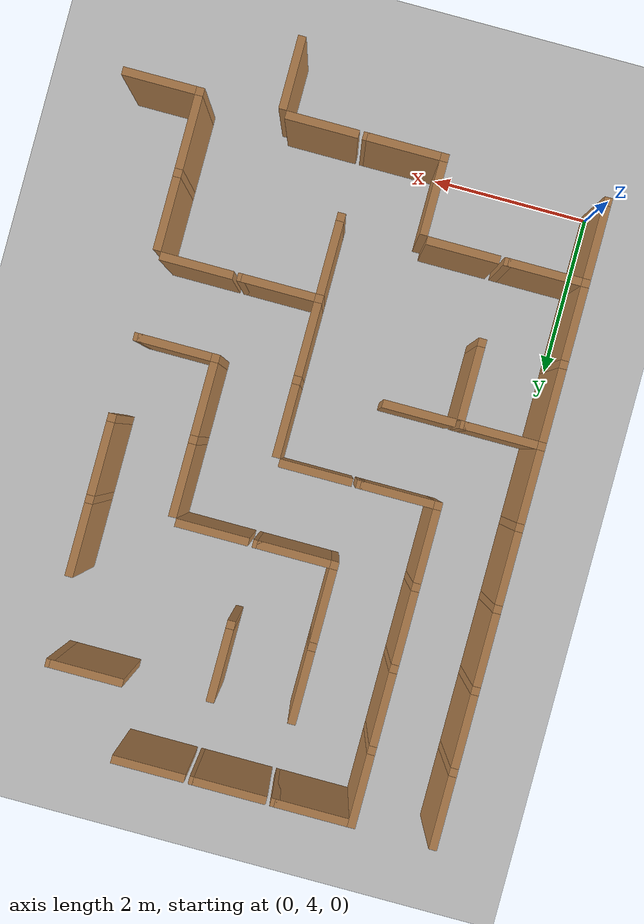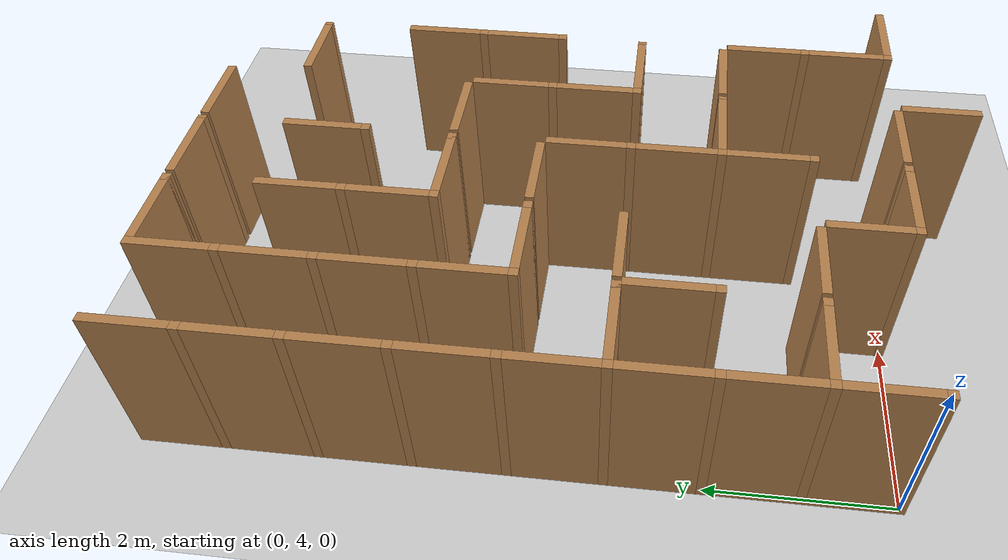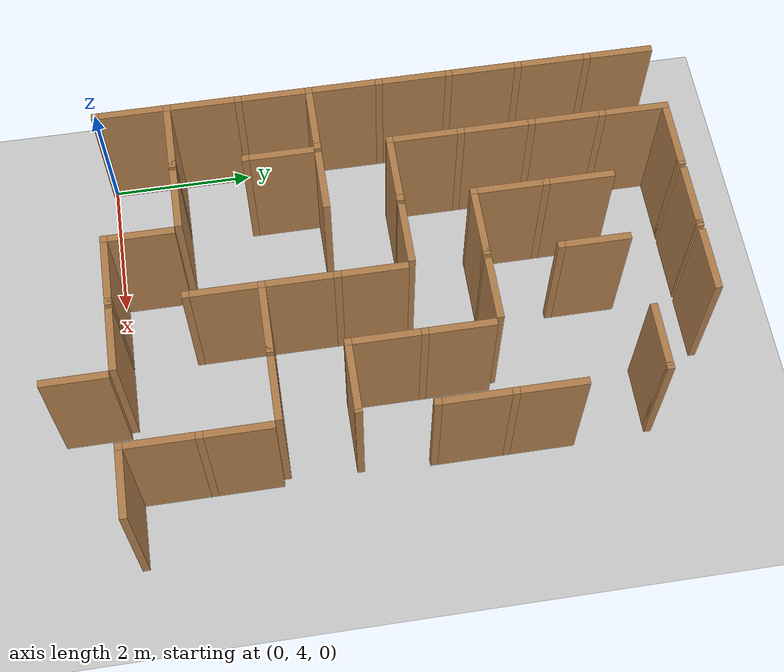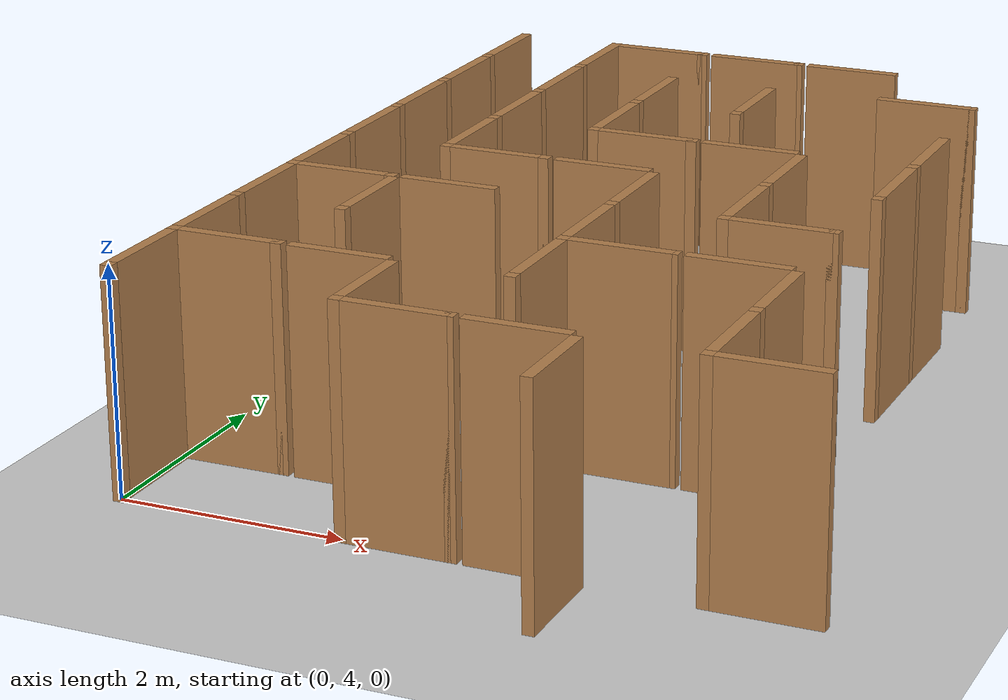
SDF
<sdf version="1.6">
 <world name="default">
  <include><uri>model://sun</uri></include>
  <model name="ground_plane">
   <static>true</static>
   <link name="link">
    <collision name="collision"><geometry><plane><size>12.0 12.0</size></plane></geometry></collision>
    <visual name="visual">
     <cast_shadows>false</cast_shadows>
     <geometry><plane><size>12.0 12.0</size></plane></geometry>
     <material>
      <script><uri>file://media/materials/scripts/gazebo.material</uri><name>Gazebo/Grey</name></script>
     </material>
    </visual>
   </link>
   <pose>6.0 6.0 0 0 0 0</pose>
  </model>
  <model name="vwall_3_4">
   <pose>4.0 3.5 1.0 0 0 0</pose>
   <link name="link">
    <collision name="collision"><geometry><box><size>0.1 0.9 2</size></box></geometry></collision>
    <visual name="visual">
     <geometry><box><size>0.1 0.9 2</size></box></geometry>
     <material>
      <script><uri>file://media/materials/scripts/gazebo.material</uri><name>Gazebo/Wood</name></script>
     </material>
    </visual>
   </link>
  </model>
  <model name="vwall_4_0">
   <pose>0.0 4.5 1.0 0 0 0</pose>
   <link name="link">
    <collision name="collision"><geometry><box><size>0.1 0.9 2</size></box></geometry></collision>
    <visual name="visual">
     <geometry><box><size>0.1 0.9 2</size></box></geometry>
     <material>
      <script><uri>file://media/materials/scripts/gazebo.material</uri><name>Gazebo/Wood</name></script>
     </material>
    </visual>
   </link>
  </model>
  <model name="joint_0.0_4.0">
   <pose>0.0 4.0 1.0 0 0 0</pose>
   <link name="link">
    <collision name="collision"><geometry><box><size>0.1 0.1 2</size></box></geometry></collision>
    <visual name="visual">
     <geometry><box><size>0.1 0.1 2</size></box></geometry>
     <material>
      <script><uri>file://media/materials/scripts/gazebo.material</uri><name>Gazebo/Wood</name></script>
     </material>
    </visual>
   </link>
  </model>
  <model name="vwall_4_2">
   <pose>2.0 4.5 1.0 0 0 0</pose>
   <link name="link">
    <collision name="collision"><geometry><box><size>0.1 0.9 2</size></box></geometry></collision>
    <visual name="visual">
     <geometry><box><size>0.1 0.9 2</size></box></geometry>
     <material>
      <script><uri>file://media/materials/scripts/gazebo.material</uri><name>Gazebo/Wood</name></script>
     </material>
    </visual>
   </link>
  </model>
  <model name="joint_2.0_4.0">
   <pose>2.0 4.0 1.0 0 0 0</pose>
   <link name="link">
    <collision name="collision"><geometry><box><size>0.1 0.1 2</size></box></geometry></collision>
    <visual name="visual">
     <geometry><box><size>0.1 0.1 2</size></box></geometry>
     <material>
      <script><uri>file://media/materials/scripts/gazebo.material</uri><name>Gazebo/Wood</name></script>
     </material>
    </visual>
   </link>
  </model>
  <model name="vwall_4_5">
   <pose>5.0 4.5 1.0 0 0 0</pose>
   <link name="link">
    <collision name="collision"><geometry><box><size>0.1 0.9 2</size></box></geometry></collision>
    <visual name="visual">
     <geometry><box><size>0.1 0.9 2</size></box></geometry>
     <material>
      <script><uri>file://media/materials/scripts/gazebo.material</uri><name>Gazebo/Wood</name></script>
     </material>
    </visual>
   </link>
  </model>
  <model name="joint_5.0_4.0">
   <pose>5.0 4.0 1.0 0 0 0</pose>
   <link name="link">
    <collision name="collision"><geometry><box><size>0.1 0.1 2</size></box></geometry></collision>
    <visual name="visual">
     <geometry><box><size>0.1 0.1 2</size></box></geometry>
     <material>
      <script><uri>file://media/materials/scripts/gazebo.material</uri><name>Gazebo/Wood</name></script>
     </material>
    </visual>
   </link>
  </model>
  <model name="vwall_5_0">
   <pose>0.0 5.5 1.0 0 0 0</pose>
   <link name="link">
    <collision name="collision"><geometry><box><size>0.1 0.9 2</size></box></geometry></collision>
    <visual name="visual">
     <geometry><box><size>0.1 0.9 2</size></box></geometry>
     <material>
      <script><uri>file://media/materials/scripts/gazebo.material</uri><name>Gazebo/Wood</name></script>
     </material>
    </visual>
   </link>
  </model>
  <model name="joint_0.0_5.0">
   <pose>0.0 5.0 1.0 0 0 0</pose>
   <link name="link">
    <collision name="collision"><geometry><box><size>0.1 0.1 2</size></box></geometry></collision>
    <visual name="visual">
     <geometry><box><size>0.1 0.1 2</size></box></geometry>
     <material>
      <script><uri>file://media/materials/scripts/gazebo.material</uri><name>Gazebo/Wood</name></script>
     </material>
    </visual>
   </link>
  </model>
  <model name="vwall_5_3">
   <pose>3.0 5.5 1.0 0 0 0</pose>
   <link name="link">
    <collision name="collision"><geometry><box><size>0.1 0.9 2</size></box></geometry></collision>
    <visual name="visual">
     <geometry><box><size>0.1 0.9 2</size></box></geometry>
     <material>
      <script><uri>file://media/materials/scripts/gazebo.material</uri><name>Gazebo/Wood</name></script>
     </material>
    </visual>
   </link>
  </model>
  <model name="joint_3.0_5.0">
   <pose>3.0 5.0 1.0 0 0 0</pose>
   <link name="link">
    <collision name="collision"><geometry><box><size>0.1 0.1 2</size></box></geometry></collision>
    <visual name="visual">
     <geometry><box><size>0.1 0.1 2</size></box></geometry>
     <material>
      <script><uri>file://media/materials/scripts/gazebo.material</uri><name>Gazebo/Wood</name></script>
     </material>
    </visual>
   </link>
  </model>
  <model name="vwall_5_5">
   <pose>5.0 5.5 1.0 0 0 0</pose>
   <link name="link">
    <collision name="collision"><geometry><box><size>0.1 0.9 2</size></box></geometry></collision>
    <visual name="visual">
     <geometry><box><size>0.1 0.9 2</size></box></geometry>
     <material>
      <script><uri>file://media/materials/scripts/gazebo.material</uri><name>Gazebo/Wood</name></script>
     </material>
    </visual>
   </link>
  </model>
  <model name="joint_5.0_5.0">
   <pose>5.0 5.0 1.0 0 0 0</pose>
   <link name="link">
    <collision name="collision"><geometry><box><size>0.1 0.1 2</size></box></geometry></collision>
    <visual name="visual">
     <geometry><box><size>0.1 0.1 2</size></box></geometry>
     <material>
      <script><uri>file://media/materials/scripts/gazebo.material</uri><name>Gazebo/Wood</name></script>
     </material>
    </visual>
   </link>
  </model>
  <model name="vwall_6_0">
   <pose>0.0 6.5 1.0 0 0 0</pose>
   <link name="link">
    <collision name="collision"><geometry><box><size>0.1 0.9 2</size></box></geometry></collision>
    <visual name="visual">
     <geometry><box><size>0.1 0.9 2</size></box></geometry>
     <material>
      <script><uri>file://media/materials/scripts/gazebo.material</uri><name>Gazebo/Wood</name></script>
     </material>
    </visual>
   </link>
  </model>
  <model name="joint_0.0_6.0">
   <pose>0.0 6.0 1.0 0 0 0</pose>
   <link name="link">
    <collision name="collision"><geometry><box><size>0.1 0.1 2</size></box></geometry></collision>
    <visual name="visual">
     <geometry><box><size>0.1 0.1 2</size></box></geometry>
     <material>
      <script><uri>file://media/materials/scripts/gazebo.material</uri><name>Gazebo/Wood</name></script>
     </material>
    </visual>
   </link>
  </model>
  <model name="vwall_6_1">
   <pose>1.0 6.5 1.0 0 0 0</pose>
   <link name="link">
    <collision name="collision"><geometry><box><size>0.1 0.9 2</size></box></geometry></collision>
    <visual name="visual">
     <geometry><box><size>0.1 0.9 2</size></box></geometry>
     <material>
      <script><uri>file://media/materials/scripts/gazebo.material</uri><name>Gazebo/Wood</name></script>
     </material>
    </visual>
   </link>
  </model>
  <model name="joint_1.0_6.0">
   <pose>1.0 6.0 1.0 0 0 0</pose>
   <link name="link">
    <collision name="collision"><geometry><box><size>0.1 0.1 2</size></box></geometry></collision>
    <visual name="visual">
     <geometry><box><size>0.1 0.1 2</size></box></geometry>
     <material>
      <script><uri>file://media/materials/scripts/gazebo.material</uri><name>Gazebo/Wood</name></script>
     </material>
    </visual>
   </link>
  </model>
  <model name="vwall_6_3">
   <pose>3.0 6.5 1.0 0 0 0</pose>
   <link name="link">
    <collision name="collision"><geometry><box><size>0.1 0.9 2</size></box></geometry></collision>
    <visual name="visual">
     <geometry><box><size>0.1 0.9 2</size></box></geometry>
     <material>
      <script><uri>file://media/materials/scripts/gazebo.material</uri><name>Gazebo/Wood</name></script>
     </material>
    </visual>
   </link>
  </model>
  <model name="joint_3.0_6.0">
   <pose>3.0 6.0 1.0 0 0 0</pose>
   <link name="link">
    <collision name="collision"><geometry><box><size>0.1 0.1 2</size></box></geometry></collision>
    <visual name="visual">
     <geometry><box><size>0.1 0.1 2</size></box></geometry>
     <material>
      <script><uri>file://media/materials/scripts/gazebo.material</uri><name>Gazebo/Wood</name></script>
     </material>
    </visual>
   </link>
  </model>
  <model name="vwall_7_0">
   <pose>0.0 7.5 1.0 0 0 0</pose>
   <link name="link">
    <collision name="collision"><geometry><box><size>0.1 0.9 2</size></box></geometry></collision>
    <visual name="visual">
     <geometry><box><size>0.1 0.9 2</size></box></geometry>
     <material>
      <script><uri>file://media/materials/scripts/gazebo.material</uri><name>Gazebo/Wood</name></script>
     </material>
    </visual>
   </link>
  </model>
  <model name="joint_0.0_7.0">
   <pose>0.0 7.0 1.0 0 0 0</pose>
   <link name="link">
    <collision name="collision"><geometry><box><size>0.1 0.1 2</size></box></geometry></collision>
    <visual name="visual">
     <geometry><box><size>0.1 0.1 2</size></box></geometry>
     <material>
      <script><uri>file://media/materials/scripts/gazebo.material</uri><name>Gazebo/Wood</name></script>
     </material>
    </visual>
   </link>
  </model>
  <model name="vwall_7_3">
   <pose>3.0 7.5 1.0 0 0 0</pose>
   <link name="link">
    <collision name="collision"><geometry><box><size>0.1 0.9 2</size></box></geometry></collision>
    <visual name="visual">
     <geometry><box><size>0.1 0.9 2</size></box></geometry>
     <material>
      <script><uri>file://media/materials/scripts/gazebo.material</uri><name>Gazebo/Wood</name></script>
     </material>
    </visual>
   </link>
  </model>
  <model name="joint_3.0_7.0">
   <pose>3.0 7.0 1.0 0 0 0</pose>
   <link name="link">
    <collision name="collision"><geometry><box><size>0.1 0.1 2</size></box></geometry></collision>
    <visual name="visual">
     <geometry><box><size>0.1 0.1 2</size></box></geometry>
     <material>
      <script><uri>file://media/materials/scripts/gazebo.material</uri><name>Gazebo/Wood</name></script>
     </material>
    </visual>
   </link>
  </model>
  <model name="vwall_7_4">
   <pose>4.0 7.5 1.0 0 0 0</pose>
   <link name="link">
    <collision name="collision"><geometry><box><size>0.1 0.9 2</size></box></geometry></collision>
    <visual name="visual">
     <geometry><box><size>0.1 0.9 2</size></box></geometry>
     <material>
      <script><uri>file://media/materials/scripts/gazebo.material</uri><name>Gazebo/Wood</name></script>
     </material>
    </visual>
   </link>
  </model>
  <model name="joint_4.0_7.0">
   <pose>4.0 7.0 1.0 0 0 0</pose>
   <link name="link">
    <collision name="collision"><geometry><box><size>0.1 0.1 2</size></box></geometry></collision>
    <visual name="visual">
     <geometry><box><size>0.1 0.1 2</size></box></geometry>
     <material>
      <script><uri>file://media/materials/scripts/gazebo.material</uri><name>Gazebo/Wood</name></script>
     </material>
    </visual>
   </link>
  </model>
  <model name="vwall_8_0">
   <pose>0.0 8.5 1.0 0 0 0</pose>
   <link name="link">
    <collision name="collision"><geometry><box><size>0.1 0.9 2</size></box></geometry></collision>
    <visual name="visual">
     <geometry><box><size>0.1 0.9 2</size></box></geometry>
     <material>
      <script><uri>file://media/materials/scripts/gazebo.material</uri><name>Gazebo/Wood</name></script>
     </material>
    </visual>
   </link>
  </model>
  <model name="joint_0.0_8.0">
   <pose>0.0 8.0 1.0 0 0 0</pose>
   <link name="link">
    <collision name="collision"><geometry><box><size>0.1 0.1 2</size></box></geometry></collision>
    <visual name="visual">
     <geometry><box><size>0.1 0.1 2</size></box></geometry>
     <material>
      <script><uri>file://media/materials/scripts/gazebo.material</uri><name>Gazebo/Wood</name></script>
     </material>
    </visual>
   </link>
  </model>
  <model name="vwall_8_1">
   <pose>1.0 8.5 1.0 0 0 0</pose>
   <link name="link">
    <collision name="collision"><geometry><box><size>0.1 0.9 2</size></box></geometry></collision>
    <visual name="visual">
     <geometry><box><size>0.1 0.9 2</size></box></geometry>
     <material>
      <script><uri>file://media/materials/scripts/gazebo.material</uri><name>Gazebo/Wood</name></script>
     </material>
    </visual>
   </link>
  </model>
  <model name="joint_1.0_8.0">
   <pose>1.0 8.0 1.0 0 0 0</pose>
   <link name="link">
    <collision name="collision"><geometry><box><size>0.1 0.1 2</size></box></geometry></collision>
    <visual name="visual">
     <geometry><box><size>0.1 0.1 2</size></box></geometry>
     <material>
      <script><uri>file://media/materials/scripts/gazebo.material</uri><name>Gazebo/Wood</name></script>
     </material>
    </visual>
   </link>
  </model>
  <model name="vwall_8_4">
   <pose>4.0 8.5 1.0 0 0 0</pose>
   <link name="link">
    <collision name="collision"><geometry><box><size>0.1 0.9 2</size></box></geometry></collision>
    <visual name="visual">
     <geometry><box><size>0.1 0.9 2</size></box></geometry>
     <material>
      <script><uri>file://media/materials/scripts/gazebo.material</uri><name>Gazebo/Wood</name></script>
     </material>
    </visual>
   </link>
  </model>
  <model name="joint_4.0_8.0">
   <pose>4.0 8.0 1.0 0 0 0</pose>
   <link name="link">
    <collision name="collision"><geometry><box><size>0.1 0.1 2</size></box></geometry></collision>
    <visual name="visual">
     <geometry><box><size>0.1 0.1 2</size></box></geometry>
     <material>
      <script><uri>file://media/materials/scripts/gazebo.material</uri><name>Gazebo/Wood</name></script>
     </material>
    </visual>
   </link>
  </model>
  <model name="vwall_8_5">
   <pose>5.0 8.5 1.0 0 0 0</pose>
   <link name="link">
    <collision name="collision"><geometry><box><size>0.1 0.9 2</size></box></geometry></collision>
    <visual name="visual">
     <geometry><box><size>0.1 0.9 2</size></box></geometry>
     <material>
      <script><uri>file://media/materials/scripts/gazebo.material</uri><name>Gazebo/Wood</name></script>
     </material>
    </visual>
   </link>
  </model>
  <model name="joint_5.0_8.0">
   <pose>5.0 8.0 1.0 0 0 0</pose>
   <link name="link">
    <collision name="collision"><geometry><box><size>0.1 0.1 2</size></box></geometry></collision>
    <visual name="visual">
     <geometry><box><size>0.1 0.1 2</size></box></geometry>
     <material>
      <script><uri>file://media/materials/scripts/gazebo.material</uri><name>Gazebo/Wood</name></script>
     </material>
    </visual>
   </link>
  </model>
  <model name="vwall_9_0">
   <pose>0.0 9.5 1.0 0 0 0</pose>
   <link name="link">
    <collision name="collision"><geometry><box><size>0.1 0.9 2</size></box></geometry></collision>
    <visual name="visual">
     <geometry><box><size>0.1 0.9 2</size></box></geometry>
     <material>
      <script><uri>file://media/materials/scripts/gazebo.material</uri><name>Gazebo/Wood</name></script>
     </material>
    </visual>
   </link>
  </model>
  <model name="joint_0.0_9.0">
   <pose>0.0 9.0 1.0 0 0 0</pose>
   <link name="link">
    <collision name="collision"><geometry><box><size>0.1 0.1 2</size></box></geometry></collision>
    <visual name="visual">
     <geometry><box><size>0.1 0.1 2</size></box></geometry>
     <material>
      <script><uri>file://media/materials/scripts/gazebo.material</uri><name>Gazebo/Wood</name></script>
     </material>
    </visual>
   </link>
  </model>
  <model name="vwall_9_1">
   <pose>1.0 9.5 1.0 0 0 0</pose>
   <link name="link">
    <collision name="collision"><geometry><box><size>0.1 0.9 2</size></box></geometry></collision>
    <visual name="visual">
     <geometry><box><size>0.1 0.9 2</size></box></geometry>
     <material>
      <script><uri>file://media/materials/scripts/gazebo.material</uri><name>Gazebo/Wood</name></script>
     </material>
    </visual>
   </link>
  </model>
  <model name="joint_1.0_9.0">
   <pose>1.0 9.0 1.0 0 0 0</pose>
   <link name="link">
    <collision name="collision"><geometry><box><size>0.1 0.1 2</size></box></geometry></collision>
    <visual name="visual">
     <geometry><box><size>0.1 0.1 2</size></box></geometry>
     <material>
      <script><uri>file://media/materials/scripts/gazebo.material</uri><name>Gazebo/Wood</name></script>
     </material>
    </visual>
   </link>
  </model>
  <model name="vwall_9_2">
   <pose>2.0 9.5 1.0 0 0 0</pose>
   <link name="link">
    <collision name="collision"><geometry><box><size>0.1 0.9 2</size></box></geometry></collision>
    <visual name="visual">
     <geometry><box><size>0.1 0.9 2</size></box></geometry>
     <material>
      <script><uri>file://media/materials/scripts/gazebo.material</uri><name>Gazebo/Wood</name></script>
     </material>
    </visual>
   </link>
  </model>
  <model name="joint_2.0_9.0">
   <pose>2.0 9.0 1.0 0 0 0</pose>
   <link name="link">
    <collision name="collision"><geometry><box><size>0.1 0.1 2</size></box></geometry></collision>
    <visual name="visual">
     <geometry><box><size>0.1 0.1 2</size></box></geometry>
     <material>
      <script><uri>file://media/materials/scripts/gazebo.material</uri><name>Gazebo/Wood</name></script>
     </material>
    </visual>
   </link>
  </model>
  <model name="vwall_9_5">
   <pose>5.0 9.5 1.0 0 0 0</pose>
   <link name="link">
    <collision name="collision"><geometry><box><size>0.1 0.9 2</size></box></geometry></collision>
    <visual name="visual">
     <geometry><box><size>0.1 0.9 2</size></box></geometry>
     <material>
      <script><uri>file://media/materials/scripts/gazebo.material</uri><name>Gazebo/Wood</name></script>
     </material>
    </visual>
   </link>
  </model>
  <model name="joint_5.0_9.0">
   <pose>5.0 9.0 1.0 0 0 0</pose>
   <link name="link">
    <collision name="collision"><geometry><box><size>0.1 0.1 2</size></box></geometry></collision>
    <visual name="visual">
     <geometry><box><size>0.1 0.1 2</size></box></geometry>
     <material>
      <script><uri>file://media/materials/scripts/gazebo.material</uri><name>Gazebo/Wood</name></script>
     </material>
    </visual>
   </link>
  </model>
  <model name="vwall_10_0">
   <pose>0.0 10.5 1.0 0 0 0</pose>
   <link name="link">
    <collision name="collision"><geometry><box><size>0.1 0.9 2</size></box></geometry></collision>
    <visual name="visual">
     <geometry><box><size>0.1 0.9 2</size></box></geometry>
     <material>
      <script><uri>file://media/materials/scripts/gazebo.material</uri><name>Gazebo/Wood</name></script>
     </material>
    </visual>
   </link>
  </model>
  <model name="joint_0.0_10.0">
   <pose>0.0 10.0 1.0 0 0 0</pose>
   <link name="link">
    <collision name="collision"><geometry><box><size>0.1 0.1 2</size></box></geometry></collision>
    <visual name="visual">
     <geometry><box><size>0.1 0.1 2</size></box></geometry>
     <material>
      <script><uri>file://media/materials/scripts/gazebo.material</uri><name>Gazebo/Wood</name></script>
     </material>
    </visual>
   </link>
  </model>
  <model name="vwall_10_1">
   <pose>1.0 10.5 1.0 0 0 0</pose>
   <link name="link">
    <collision name="collision"><geometry><box><size>0.1 0.9 2</size></box></geometry></collision>
    <visual name="visual">
     <geometry><box><size>0.1 0.9 2</size></box></geometry>
     <material>
      <script><uri>file://media/materials/scripts/gazebo.material</uri><name>Gazebo/Wood</name></script>
     </material>
    </visual>
   </link>
  </model>
  <model name="joint_1.0_10.0">
   <pose>1.0 10.0 1.0 0 0 0</pose>
   <link name="link">
    <collision name="collision"><geometry><box><size>0.1 0.1 2</size></box></geometry></collision>
    <visual name="visual">
     <geometry><box><size>0.1 0.1 2</size></box></geometry>
     <material>
      <script><uri>file://media/materials/scripts/gazebo.material</uri><name>Gazebo/Wood</name></script>
     </material>
    </visual>
   </link>
  </model>
  <model name="vwall_10_2">
   <pose>2.0 10.5 1.0 0 0 0</pose>
   <link name="link">
    <collision name="collision"><geometry><box><size>0.1 0.9 2</size></box></geometry></collision>
    <visual name="visual">
     <geometry><box><size>0.1 0.9 2</size></box></geometry>
     <material>
      <script><uri>file://media/materials/scripts/gazebo.material</uri><name>Gazebo/Wood</name></script>
     </material>
    </visual>
   </link>
  </model>
  <model name="joint_2.0_10.0">
   <pose>2.0 10.0 1.0 0 0 0</pose>
   <link name="link">
    <collision name="collision"><geometry><box><size>0.1 0.1 2</size></box></geometry></collision>
    <visual name="visual">
     <geometry><box><size>0.1 0.1 2</size></box></geometry>
     <material>
      <script><uri>file://media/materials/scripts/gazebo.material</uri><name>Gazebo/Wood</name></script>
     </material>
    </visual>
   </link>
  </model>
  <model name="vwall_10_3">
   <pose>3.0 10.5 1.0 0 0 0</pose>
   <link name="link">
    <collision name="collision"><geometry><box><size>0.1 0.9 2</size></box></geometry></collision>
    <visual name="visual">
     <geometry><box><size>0.1 0.9 2</size></box></geometry>
     <material>
      <script><uri>file://media/materials/scripts/gazebo.material</uri><name>Gazebo/Wood</name></script>
     </material>
    </visual>
   </link>
  </model>
  <model name="joint_3.0_10.0">
   <pose>3.0 10.0 1.0 0 0 0</pose>
   <link name="link">
    <collision name="collision"><geometry><box><size>0.1 0.1 2</size></box></geometry></collision>
    <visual name="visual">
     <geometry><box><size>0.1 0.1 2</size></box></geometry>
     <material>
      <script><uri>file://media/materials/scripts/gazebo.material</uri><name>Gazebo/Wood</name></script>
     </material>
    </visual>
   </link>
  </model>
  <model name="vwall_11_0">
   <pose>0.0 11.5 1.0 0 0 0</pose>
   <link name="link">
    <collision name="collision"><geometry><box><size>0.1 0.9 2</size></box></geometry></collision>
    <visual name="visual">
     <geometry><box><size>0.1 0.9 2</size></box></geometry>
     <material>
      <script><uri>file://media/materials/scripts/gazebo.material</uri><name>Gazebo/Wood</name></script>
     </material>
    </visual>
   </link>
  </model>
  <model name="joint_0.0_11.0">
   <pose>0.0 11.0 1.0 0 0 0</pose>
   <link name="link">
    <collision name="collision"><geometry><box><size>0.1 0.1 2</size></box></geometry></collision>
    <visual name="visual">
     <geometry><box><size>0.1 0.1 2</size></box></geometry>
     <material>
      <script><uri>file://media/materials/scripts/gazebo.material</uri><name>Gazebo/Wood</name></script>
     </material>
    </visual>
   </link>
  </model>
  <model name="vwall_11_1">
   <pose>1.0 11.5 1.0 0 0 0</pose>
   <link name="link">
    <collision name="collision"><geometry><box><size>0.1 0.9 2</size></box></geometry></collision>
    <visual name="visual">
     <geometry><box><size>0.1 0.9 2</size></box></geometry>
     <material>
      <script><uri>file://media/materials/scripts/gazebo.material</uri><name>Gazebo/Wood</name></script>
     </material>
    </visual>
   </link>
  </model>
  <model name="joint_1.0_11.0">
   <pose>1.0 11.0 1.0 0 0 0</pose>
   <link name="link">
    <collision name="collision"><geometry><box><size>0.1 0.1 2</size></box></geometry></collision>
    <visual name="visual">
     <geometry><box><size>0.1 0.1 2</size></box></geometry>
     <material>
      <script><uri>file://media/materials/scripts/gazebo.material</uri><name>Gazebo/Wood</name></script>
     </material>
    </visual>
   </link>
  </model>
  <model name="hwall_4_2">
   <pose>2.5 4.0 1.0 0 0 0</pose>
   <link name="link">
    <collision name="collision"><geometry><box><size>0.9 0.1 2</size></box></geometry></collision>
    <visual name="visual">
     <geometry><box><size>0.9 0.1 2</size></box></geometry>
     <material>
      <script><uri>file://media/materials/scripts/gazebo.material</uri><name>Gazebo/Wood</name></script>
     </material>
    </visual>
   </link>
  </model>
  <model name="joint_2.95_4.0">
   <pose>2.95 4.0 1.0 0 0 0</pose>
   <link name="link">
    <collision name="collision"><geometry><box><size>0.1 0.1 2</size></box></geometry></collision>
    <visual name="visual">
     <geometry><box><size>0.1 0.1 2</size></box></geometry>
     <material>
      <script><uri>file://media/materials/scripts/gazebo.material</uri><name>Gazebo/Wood</name></script>
     </material>
    </visual>
   </link>
  </model>
  <model name="hwall_4_3">
   <pose>3.5 4.0 1.0 0 0 0</pose>
   <link name="link">
    <collision name="collision"><geometry><box><size>0.9 0.1 2</size></box></geometry></collision>
    <visual name="visual">
     <geometry><box><size>0.9 0.1 2</size></box></geometry>
     <material>
      <script><uri>file://media/materials/scripts/gazebo.material</uri><name>Gazebo/Wood</name></script>
     </material>
    </visual>
   </link>
  </model>
  <model name="hwall_4_5">
   <pose>5.5 4.0 1.0 0 0 0</pose>
   <link name="link">
    <collision name="collision"><geometry><box><size>0.9 0.1 2</size></box></geometry></collision>
    <visual name="visual">
     <geometry><box><size>0.9 0.1 2</size></box></geometry>
     <material>
      <script><uri>file://media/materials/scripts/gazebo.material</uri><name>Gazebo/Wood</name></script>
     </material>
    </visual>
   </link>
  </model>
  <model name="hwall_5_0">
   <pose>0.5 5.0 1.0 0 0 0</pose>
   <link name="link">
    <collision name="collision"><geometry><box><size>0.9 0.1 2</size></box></geometry></collision>
    <visual name="visual">
     <geometry><box><size>0.9 0.1 2</size></box></geometry>
     <material>
      <script><uri>file://media/materials/scripts/gazebo.material</uri><name>Gazebo/Wood</name></script>
     </material>
    </visual>
   </link>
  </model>
  <model name="joint_0.95_5.0">
   <pose>0.95 5.0 1.0 0 0 0</pose>
   <link name="link">
    <collision name="collision"><geometry><box><size>0.1 0.1 2</size></box></geometry></collision>
    <visual name="visual">
     <geometry><box><size>0.1 0.1 2</size></box></geometry>
     <material>
      <script><uri>file://media/materials/scripts/gazebo.material</uri><name>Gazebo/Wood</name></script>
     </material>
    </visual>
   </link>
  </model>
  <model name="hwall_5_1">
   <pose>1.5 5.0 1.0 0 0 0</pose>
   <link name="link">
    <collision name="collision"><geometry><box><size>0.9 0.1 2</size></box></geometry></collision>
    <visual name="visual">
     <geometry><box><size>0.9 0.1 2</size></box></geometry>
     <material>
      <script><uri>file://media/materials/scripts/gazebo.material</uri><name>Gazebo/Wood</name></script>
     </material>
    </visual>
   </link>
  </model>
  <model name="hwall_6_3">
   <pose>3.5 6.0 1.0 0 0 0</pose>
   <link name="link">
    <collision name="collision"><geometry><box><size>0.9 0.1 2</size></box></geometry></collision>
    <visual name="visual">
     <geometry><box><size>0.9 0.1 2</size></box></geometry>
     <material>
      <script><uri>file://media/materials/scripts/gazebo.material</uri><name>Gazebo/Wood</name></script>
     </material>
    </visual>
   </link>
  </model>
  <model name="joint_3.95_6.0">
   <pose>3.95 6.0 1.0 0 0 0</pose>
   <link name="link">
    <collision name="collision"><geometry><box><size>0.1 0.1 2</size></box></geometry></collision>
    <visual name="visual">
     <geometry><box><size>0.1 0.1 2</size></box></geometry>
     <material>
      <script><uri>file://media/materials/scripts/gazebo.material</uri><name>Gazebo/Wood</name></script>
     </material>
    </visual>
   </link>
  </model>
  <model name="hwall_6_4">
   <pose>4.5 6.0 1.0 0 0 0</pose>
   <link name="link">
    <collision name="collision"><geometry><box><size>0.9 0.1 2</size></box></geometry></collision>
    <visual name="visual">
     <geometry><box><size>0.9 0.1 2</size></box></geometry>
     <material>
      <script><uri>file://media/materials/scripts/gazebo.material</uri><name>Gazebo/Wood</name></script>
     </material>
    </visual>
   </link>
  </model>
  <model name="hwall_7_0">
   <pose>0.5 7.0 1.0 0 0 0</pose>
   <link name="link">
    <collision name="collision"><geometry><box><size>0.9 0.1 2</size></box></geometry></collision>
    <visual name="visual">
     <geometry><box><size>0.9 0.1 2</size></box></geometry>
     <material>
      <script><uri>file://media/materials/scripts/gazebo.material</uri><name>Gazebo/Wood</name></script>
     </material>
    </visual>
   </link>
  </model>
  <model name="joint_0.95_7.0">
   <pose>0.95 7.0 1.0 0 0 0</pose>
   <link name="link">
    <collision name="collision"><geometry><box><size>0.1 0.1 2</size></box></geometry></collision>
    <visual name="visual">
     <geometry><box><size>0.1 0.1 2</size></box></geometry>
     <material>
      <script><uri>file://media/materials/scripts/gazebo.material</uri><name>Gazebo/Wood</name></script>
     </material>
    </visual>
   </link>
  </model>
  <model name="hwall_7_1">
   <pose>1.5 7.0 1.0 0 0 0</pose>
   <link name="link">
    <collision name="collision"><geometry><box><size>0.9 0.1 2</size></box></geometry></collision>
    <visual name="visual">
     <geometry><box><size>0.9 0.1 2</size></box></geometry>
     <material>
      <script><uri>file://media/materials/scripts/gazebo.material</uri><name>Gazebo/Wood</name></script>
     </material>
    </visual>
   </link>
  </model>
  <model name="hwall_7_4">
   <pose>4.5 7.0 1.0 0 0 0</pose>
   <link name="link">
    <collision name="collision"><geometry><box><size>0.9 0.1 2</size></box></geometry></collision>
    <visual name="visual">
     <geometry><box><size>0.9 0.1 2</size></box></geometry>
     <material>
      <script><uri>file://media/materials/scripts/gazebo.material</uri><name>Gazebo/Wood</name></script>
     </material>
    </visual>
   </link>
  </model>
  <model name="joint_4.95_7.0">
   <pose>4.95 7.0 1.0 0 0 0</pose>
   <link name="link">
    <collision name="collision"><geometry><box><size>0.1 0.1 2</size></box></geometry></collision>
    <visual name="visual">
     <geometry><box><size>0.1 0.1 2</size></box></geometry>
     <material>
      <script><uri>file://media/materials/scripts/gazebo.material</uri><name>Gazebo/Wood</name></script>
     </material>
    </visual>
   </link>
  </model>
  <model name="hwall_8_1">
   <pose>1.5 8.0 1.0 0 0 0</pose>
   <link name="link">
    <collision name="collision"><geometry><box><size>0.9 0.1 2</size></box></geometry></collision>
    <visual name="visual">
     <geometry><box><size>0.9 0.1 2</size></box></geometry>
     <material>
      <script><uri>file://media/materials/scripts/gazebo.material</uri><name>Gazebo/Wood</name></script>
     </material>
    </visual>
   </link>
  </model>
  <model name="joint_1.95_8.0">
   <pose>1.95 8.0 1.0 0 0 0</pose>
   <link name="link">
    <collision name="collision"><geometry><box><size>0.1 0.1 2</size></box></geometry></collision>
    <visual name="visual">
     <geometry><box><size>0.1 0.1 2</size></box></geometry>
     <material>
      <script><uri>file://media/materials/scripts/gazebo.material</uri><name>Gazebo/Wood</name></script>
     </material>
    </visual>
   </link>
  </model>
  <model name="hwall_8_2">
   <pose>2.5 8.0 1.0 0 0 0</pose>
   <link name="link">
    <collision name="collision"><geometry><box><size>0.9 0.1 2</size></box></geometry></collision>
    <visual name="visual">
     <geometry><box><size>0.9 0.1 2</size></box></geometry>
     <material>
      <script><uri>file://media/materials/scripts/gazebo.material</uri><name>Gazebo/Wood</name></script>
     </material>
    </visual>
   </link>
  </model>
  <model name="hwall_9_2">
   <pose>2.5 9.0 1.0 0 0 0</pose>
   <link name="link">
    <collision name="collision"><geometry><box><size>0.9 0.1 2</size></box></geometry></collision>
    <visual name="visual">
     <geometry><box><size>0.9 0.1 2</size></box></geometry>
     <material>
      <script><uri>file://media/materials/scripts/gazebo.material</uri><name>Gazebo/Wood</name></script>
     </material>
    </visual>
   </link>
  </model>
  <model name="joint_2.95_9.0">
   <pose>2.95 9.0 1.0 0 0 0</pose>
   <link name="link">
    <collision name="collision"><geometry><box><size>0.1 0.1 2</size></box></geometry></collision>
    <visual name="visual">
     <geometry><box><size>0.1 0.1 2</size></box></geometry>
     <material>
      <script><uri>file://media/materials/scripts/gazebo.material</uri><name>Gazebo/Wood</name></script>
     </material>
    </visual>
   </link>
  </model>
  <model name="hwall_9_3">
   <pose>3.5 9.0 1.0 0 0 0</pose>
   <link name="link">
    <collision name="collision"><geometry><box><size>0.9 0.1 2</size></box></geometry></collision>
    <visual name="visual">
     <geometry><box><size>0.9 0.1 2</size></box></geometry>
     <material>
      <script><uri>file://media/materials/scripts/gazebo.material</uri><name>Gazebo/Wood</name></script>
     </material>
    </visual>
   </link>
  </model>
  <model name="hwall_11_1">
   <pose>1.5 11.9 1.0 0 0 0</pose>
   <link name="link">
    <collision name="collision"><geometry><box><size>0.9 0.1 2</size></box></geometry></collision>
    <visual name="visual">
     <geometry><box><size>0.9 0.1 2</size></box></geometry>
     <material>
      <script><uri>file://media/materials/scripts/gazebo.material</uri><name>Gazebo/Wood</name></script>
     </material>
    </visual>
   </link>
  </model>
  <model name="joint_1.95_11.9">
   <pose>1.95 11.9 1.0 0 0 0</pose>
   <link name="link">
    <collision name="collision"><geometry><box><size>0.1 0.1 2</size></box></geometry></collision>
    <visual name="visual">
     <geometry><box><size>0.1 0.1 2</size></box></geometry>
     <material>
      <script><uri>file://media/materials/scripts/gazebo.material</uri><name>Gazebo/Wood</name></script>
     </material>
    </visual>
   </link>
  </model>
  <model name="hwall_11_2">
   <pose>2.5 11.9 1.0 0 0 0</pose>
   <link name="link">
    <collision name="collision"><geometry><box><size>0.9 0.1 2</size></box></geometry></collision>
    <visual name="visual">
     <geometry><box><size>0.9 0.1 2</size></box></geometry>
     <material>
      <script><uri>file://media/materials/scripts/gazebo.material</uri><name>Gazebo/Wood</name></script>
     </material>
    </visual>
   </link>
  </model>
  <model name="joint_2.95_11.9">
   <pose>2.95 11.9 1.0 0 0 0</pose>
   <link name="link">
    <collision name="collision"><geometry><box><size>0.1 0.1 2</size></box></geometry></collision>
    <visual name="visual">
     <geometry><box><size>0.1 0.1 2</size></box></geometry>
     <material>
      <script><uri>file://media/materials/scripts/gazebo.material</uri><name>Gazebo/Wood</name></script>
     </material>
    </visual>
   </link>
  </model>
  <model name="hwall_11_3">
   <pose>3.5 11.9 1.0 0 0 0</pose>
   <link name="link">
    <collision name="collision"><geometry><box><size>0.9 0.1 2</size></box></geometry></collision>
    <visual name="visual">
     <geometry><box><size>0.9 0.1 2</size></box></geometry>
     <material>
      <script><uri>file://media/materials/scripts/gazebo.material</uri><name>Gazebo/Wood</name></script>
     </material>
    </visual>
   </link>
  </model>
  <model name="hwall_11_4">
   <pose>4.5 11.0 1.0 0 0 0</pose>
   <link name="link">
    <collision name="collision"><geometry><box><size>0.9 0.1 2</size></box></geometry></collision>
    <visual name="visual">
     <geometry><box><size>0.9 0.1 2</size></box></geometry>
     <material>
      <script><uri>file://media/materials/scripts/gazebo.material</uri><name>Gazebo/Wood</name></script>
     </material>
    </visual>
   </link>
  </model>
  <model name="joint_4.95_11.0">
   <pose>4.95 11.0 1.0 0 0 0</pose>
   <link name="link">
    <collision name="collision"><geometry><box><size>0.1 0.1 2</size></box></geometry></collision>
    <visual name="visual">
     <geometry><box><size>0.1 0.1 2</size></box></geometry>
     <material>
      <script><uri>file://media/materials/scripts/gazebo.material</uri><name>Gazebo/Wood</name></script>
     </material>
    </visual>
   </link>
  </model>
 </world>
</sdf>
